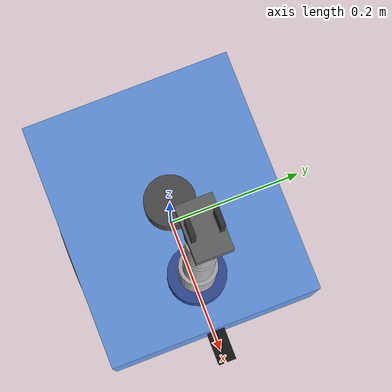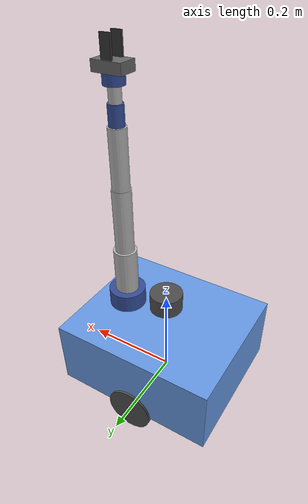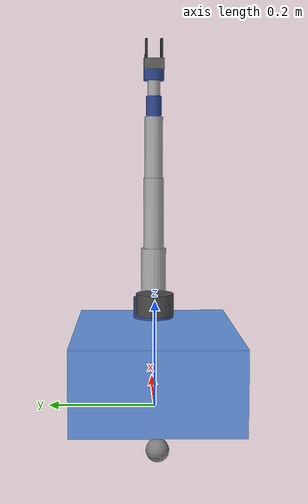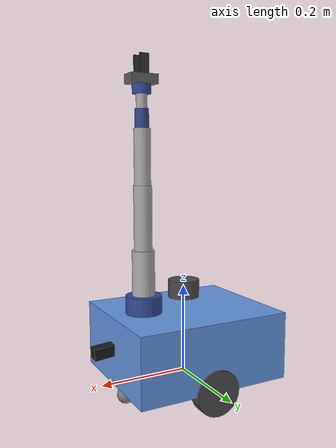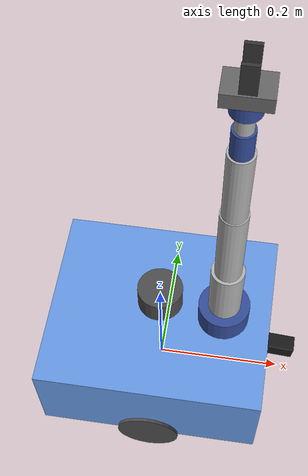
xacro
<?xml version="1.0"?>
<!-- 家用机器人主URDF描述文件 -->
<!-- 集成底盘 + 机械臂 + 夹爪 + 传感器 -->
<robot xmlns:xacro="http://www.ros.org/wiki/xacro" name="robot_home">

  <!-- 引入子模块 -->
  <xacro:include filename="$(find robot_home_description)/urdf/chassis.urdf.xacro"/>
  <xacro:include filename="$(find robot_home_description)/urdf/arm.urdf.xacro"/>
  <xacro:include filename="$(find robot_home_description)/urdf/gripper.urdf.xacro"/>

  <!-- 机器人基础参数 -->
  <xacro:property name="chassis_length" value="0.35"/>
  <xacro:property name="chassis_width" value="0.30"/>
  <xacro:property name="chassis_height" value="0.15"/>
  <xacro:property name="wheel_radius" value="0.05"/>
  <xacro:property name="wheel_separation" value="0.28"/>

  <!-- 底盘 -->
  <xacro:chassis
    length="${chassis_length}"
    width="${chassis_width}"
    height="${chassis_height}"
    wheel_radius="${wheel_radius}"
    wheel_separation="${wheel_separation}"
  />

  <!-- 机械臂（安装在底盘顶部前方） -->
  <xacro:arm parent="base_link">
    <origin xyz="0.1 0 0.15" rpy="0 0 0"/>
  </xacro:arm>

  <!-- 夹爪（安装在机械臂末端） -->
  <xacro:gripper parent="arm_link_6">
    <origin xyz="0 0 0.02" rpy="0 0 0"/>
  </xacro:gripper>

  <!-- 激光雷达（安装在底盘顶部中央） -->
  <link name="lidar_link">
    <visual>
      <origin xyz="0 0 0" rpy="0 0 0"/>
      <geometry>
        <cylinder radius="0.035" length="0.04"/>
      </geometry>
      <material name="dark_grey">
        <color rgba="0.3 0.3 0.3 1.0"/>
      </material>
    </visual>
    <collision>
      <origin xyz="0 0 0" rpy="0 0 0"/>
      <geometry>
        <cylinder radius="0.035" length="0.04"/>
      </geometry>
    </collision>
    <inertial>
      <mass value="0.2"/>
      <inertia ixx="0.0001" ixy="0" ixz="0" iyy="0.0001" iyz="0" izz="0.0001"/>
    </inertial>
  </link>
  <joint name="lidar_joint" type="fixed">
    <parent link="base_link"/>
    <child link="lidar_link"/>
    <origin xyz="0 0 0.195" rpy="0 0 0"/>
  </joint>

  <!-- 深度相机（安装在底盘前方，略高于底盘） -->
  <link name="camera_link">
    <visual>
      <origin xyz="0 0 0" rpy="0 0 0"/>
      <geometry>
        <box size="0.09 0.025 0.025"/>
      </geometry>
      <material name="black">
        <color rgba="0.1 0.1 0.1 1.0"/>
      </material>
    </visual>
    <collision>
      <origin xyz="0 0 0" rpy="0 0 0"/>
      <geometry>
        <box size="0.09 0.025 0.025"/>
      </geometry>
    </collision>
    <inertial>
      <mass value="0.07"/>
      <inertia ixx="0.00001" ixy="0" ixz="0" iyy="0.00001" iyz="0" izz="0.00001"/>
    </inertial>
  </link>
  <joint name="camera_joint" type="fixed">
    <parent link="base_link"/>
    <child link="camera_link"/>
    <origin xyz="0.175 0 0.08" rpy="0 0.1 0"/>
  </joint>

  <!-- 相机光学坐标系（ROS标准：z向前，y向下，x向右） -->
  <link name="camera_optical_link"/>
  <joint name="camera_optical_joint" type="fixed">
    <parent link="camera_link"/>
    <child link="camera_optical_link"/>
    <origin xyz="0 0 0" rpy="${-pi/2} 0 ${-pi/2}"/>
  </joint>

  <!-- IMU传感器 -->
  <link name="imu_link">
    <inertial>
      <mass value="0.01"/>
      <inertia ixx="0.000001" ixy="0" ixz="0" iyy="0.000001" iyz="0" izz="0.000001"/>
    </inertial>
  </link>
  <joint name="imu_joint" type="fixed">
    <parent link="base_link"/>
    <child link="imu_link"/>
    <origin xyz="0 0 0.1" rpy="0 0 0"/>
  </joint>

</robot>

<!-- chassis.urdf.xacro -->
<!-- 底盘描述 - 差速驱动移动平台 -->
<robot xmlns:xacro="http://www.ros.org/wiki/xacro">

  <xacro:macro name="chassis" params="length width height wheel_radius wheel_separation">

    <!-- 底盘主体 -->
    <link name="base_link">
      <visual>
        <origin xyz="0 0 ${height/2}" rpy="0 0 0"/>
        <geometry>
          <box size="${length} ${width} ${height}"/>
        </geometry>
        <material name="light_blue">
          <color rgba="0.4 0.6 0.9 1.0"/>
        </material>
      </visual>
      <collision>
        <origin xyz="0 0 ${height/2}" rpy="0 0 0"/>
        <geometry>
          <box size="${length} ${width} ${height}"/>
        </geometry>
      </collision>
      <inertial>
        <mass value="5.0"/>
        <origin xyz="0 0 ${height/2}"/>
        <inertia ixx="0.05" ixy="0" ixz="0" iyy="0.08" iyz="0" izz="0.1"/>
      </inertial>
    </link>

    <!-- 左驱动轮 -->
    <xacro:wheel prefix="left" y_offset="${wheel_separation/2}"/>
    <!-- 右驱动轮 -->
    <xacro:wheel prefix="right" y_offset="${-wheel_separation/2}"/>
    <!-- 前万向轮 -->
    <xacro:caster prefix="front" x_offset="${length/2 - 0.03}"/>
    <!-- 后万向轮 -->
    <xacro:caster prefix="rear" x_offset="${-length/2 + 0.03}"/>

  </xacro:macro>

  <!-- 驱动轮宏 -->
  <xacro:macro name="wheel" params="prefix y_offset">
    <link name="${prefix}_wheel_link">
      <visual>
        <origin xyz="0 0 0" rpy="${pi/2} 0 0"/>
        <geometry>
          <cylinder radius="0.05" length="0.03"/>
        </geometry>
        <material name="dark_grey">
          <color rgba="0.3 0.3 0.3 1.0"/>
        </material>
      </visual>
      <collision>
        <origin xyz="0 0 0" rpy="${pi/2} 0 0"/>
        <geometry>
          <cylinder radius="0.05" length="0.03"/>
        </geometry>
      </collision>
      <inertial>
        <mass value="0.3"/>
        <inertia ixx="0.001" ixy="0" ixz="0" iyy="0.001" iyz="0" izz="0.001"/>
      </inertial>
    </link>
    <joint name="${prefix}_wheel_joint" type="continuous">
      <parent link="base_link"/>
      <child link="${prefix}_wheel_link"/>
      <origin xyz="0 ${y_offset} 0" rpy="0 0 0"/>
      <axis xyz="0 1 0"/>
      <dynamics damping="0.1" friction="0.1"/>
    </joint>
  </xacro:macro>

  <!-- 万向轮宏 -->
  <xacro:macro name="caster" params="prefix x_offset">
    <link name="${prefix}_caster_link">
      <visual>
        <origin xyz="0 0 0" rpy="0 0 0"/>
        <geometry>
          <sphere radius="0.02"/>
        </geometry>
        <material name="grey">
          <color rgba="0.5 0.5 0.5 1.0"/>
        </material>
      </visual>
      <collision>
        <origin xyz="0 0 0" rpy="0 0 0"/>
        <geometry>
          <sphere radius="0.02"/>
        </geometry>
      </collision>
      <inertial>
        <mass value="0.1"/>
        <inertia ixx="0.0001" ixy="0" ixz="0" iyy="0.0001" iyz="0" izz="0.0001"/>
      </inertial>
    </link>
    <joint name="${prefix}_caster_joint" type="fixed">
      <parent link="base_link"/>
      <child link="${prefix}_caster_link"/>
      <origin xyz="${x_offset} 0 -0.03" rpy="0 0 0"/>
    </joint>
  </xacro:macro>

</robot>

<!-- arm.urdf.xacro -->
<!-- 6DOF机械臂描述 - 家用小型机械臂 -->
<robot xmlns:xacro="http://www.ros.org/wiki/xacro">

  <xacro:macro name="arm" params="parent *origin">

    <!-- 关节连接 -->
    <joint name="arm_base_joint" type="fixed">
      <xacro:insert_block name="origin"/>
      <parent link="${parent}"/>
      <child link="arm_base_link"/>
    </joint>

    <!-- 机械臂基座 -->
    <link name="arm_base_link">
      <visual>
        <origin xyz="0 0 0.02" rpy="0 0 0"/>
        <geometry>
          <cylinder radius="0.04" length="0.04"/>
        </geometry>
        <material name="dark_blue">
          <color rgba="0.2 0.3 0.6 1.0"/>
        </material>
      </visual>
      <collision>
        <origin xyz="0 0 0.02" rpy="0 0 0"/>
        <geometry>
          <cylinder radius="0.04" length="0.04"/>
        </geometry>
      </collision>
      <inertial>
        <mass value="0.5"/>
        <inertia ixx="0.001" ixy="0" ixz="0" iyy="0.001" iyz="0" izz="0.001"/>
      </inertial>
    </link>

    <!-- 关节1: 基座旋转 (yaw) -->
    <joint name="arm_joint_1" type="revolute">
      <parent link="arm_base_link"/>
      <child link="arm_link_1"/>
      <origin xyz="0 0 0.04" rpy="0 0 0"/>
      <axis xyz="0 0 1"/>
      <limit lower="-3.14" upper="3.14" effort="10" velocity="1.5"/>
      <dynamics damping="0.5" friction="0.1"/>
    </joint>

    <link name="arm_link_1">
      <visual>
        <origin xyz="0 0 0.05" rpy="0 0 0"/>
        <geometry>
          <cylinder radius="0.025" length="0.1"/>
        </geometry>
        <material name="silver">
          <color rgba="0.7 0.7 0.7 1.0"/>
        </material>
      </visual>
      <collision>
        <origin xyz="0 0 0.05" rpy="0 0 0"/>
        <geometry>
          <cylinder radius="0.025" length="0.1"/>
        </geometry>
      </collision>
      <inertial>
        <mass value="0.4"/>
        <origin xyz="0 0 0.05"/>
        <inertia ixx="0.0005" ixy="0" ixz="0" iyy="0.0005" iyz="0" izz="0.0002"/>
      </inertial>
    </link>

    <!-- 关节2: 肩部 (pitch) -->
    <joint name="arm_joint_2" type="revolute">
      <parent link="arm_link_1"/>
      <child link="arm_link_2"/>
      <origin xyz="0 0 0.1" rpy="0 0 0"/>
      <axis xyz="0 1 0"/>
      <limit lower="-1.57" upper="1.57" effort="15" velocity="1.2"/>
      <dynamics damping="0.5" friction="0.1"/>
    </joint>

    <link name="arm_link_2">
      <visual>
        <origin xyz="0 0 0.07" rpy="0 0 0"/>
        <geometry>
          <cylinder radius="0.02" length="0.14"/>
        </geometry>
        <material name="silver"/>
      </visual>
      <collision>
        <origin xyz="0 0 0.07" rpy="0 0 0"/>
        <geometry>
          <cylinder radius="0.02" length="0.14"/>
        </geometry>
      </collision>
      <inertial>
        <mass value="0.35"/>
        <origin xyz="0 0 0.07"/>
        <inertia ixx="0.0008" ixy="0" ixz="0" iyy="0.0008" iyz="0" izz="0.0001"/>
      </inertial>
    </link>

    <!-- 关节3: 肘部 (pitch) -->
    <joint name="arm_joint_3" type="revolute">
      <parent link="arm_link_2"/>
      <child link="arm_link_3"/>
      <origin xyz="0 0 0.14" rpy="0 0 0"/>
      <axis xyz="0 1 0"/>
      <limit lower="-2.0" upper="2.0" effort="12" velocity="1.5"/>
      <dynamics damping="0.3" friction="0.1"/>
    </joint>

    <link name="arm_link_3">
      <visual>
        <origin xyz="0 0 0.06" rpy="0 0 0"/>
        <geometry>
          <cylinder radius="0.018" length="0.12"/>
        </geometry>
        <material name="silver"/>
      </visual>
      <collision>
        <origin xyz="0 0 0.06" rpy="0 0 0"/>
        <geometry>
          <cylinder radius="0.018" length="0.12"/>
        </geometry>
      </collision>
      <inertial>
        <mass value="0.3"/>
        <origin xyz="0 0 0.06"/>
        <inertia ixx="0.0005" ixy="0" ixz="0" iyy="0.0005" iyz="0" izz="0.0001"/>
      </inertial>
    </link>

    <!-- 关节4: 腕部旋转 (roll) -->
    <joint name="arm_joint_4" type="revolute">
      <parent link="arm_link_3"/>
      <child link="arm_link_4"/>
      <origin xyz="0 0 0.12" rpy="0 0 0"/>
      <axis xyz="1 0 0"/>
      <limit lower="-3.14" upper="3.14" effort="5" velocity="2.0"/>
      <dynamics damping="0.2" friction="0.05"/>
    </joint>

    <link name="arm_link_4">
      <visual>
        <origin xyz="0 0 0.02" rpy="0 0 0"/>
        <geometry>
          <cylinder radius="0.015" length="0.04"/>
        </geometry>
        <material name="dark_blue"/>
      </visual>
      <collision>
        <origin xyz="0 0 0.02" rpy="0 0 0"/>
        <geometry>
          <cylinder radius="0.015" length="0.04"/>
        </geometry>
      </collision>
      <inertial>
        <mass value="0.15"/>
        <inertia ixx="0.0001" ixy="0" ixz="0" iyy="0.0001" iyz="0" izz="0.00005"/>
      </inertial>
    </link>

    <!-- 关节5: 腕部俯仰 (pitch) -->
    <joint name="arm_joint_5" type="revolute">
      <parent link="arm_link_4"/>
      <child link="arm_link_5"/>
      <origin xyz="0 0 0.04" rpy="0 0 0"/>
      <axis xyz="0 1 0"/>
      <limit lower="-1.57" upper="1.57" effort="5" velocity="2.0"/>
      <dynamics damping="0.2" friction="0.05"/>
    </joint>

    <link name="arm_link_5">
      <visual>
        <origin xyz="0 0 0.015" rpy="0 0 0"/>
        <geometry>
          <cylinder radius="0.012" length="0.03"/>
        </geometry>
        <material name="silver"/>
      </visual>
      <collision>
        <origin xyz="0 0 0.015" rpy="0 0 0"/>
        <geometry>
          <cylinder radius="0.012" length="0.03"/>
        </geometry>
      </collision>
      <inertial>
        <mass value="0.1"/>
        <inertia ixx="0.00005" ixy="0" ixz="0" iyy="0.00005" iyz="0" izz="0.00003"/>
      </inertial>
    </link>

    <!-- 关节6: 末端旋转 (yaw) -->
    <joint name="arm_joint_6" type="revolute">
      <parent link="arm_link_5"/>
      <child link="arm_link_6"/>
      <origin xyz="0 0 0.03" rpy="0 0 0"/>
      <axis xyz="0 0 1"/>
      <limit lower="-3.14" upper="3.14" effort="3" velocity="2.5"/>
      <dynamics damping="0.1" friction="0.05"/>
    </joint>

    <link name="arm_link_6">
      <visual>
        <origin xyz="0 0 0.01" rpy="0 0 0"/>
        <geometry>
          <cylinder radius="0.02" length="0.02"/>
        </geometry>
        <material name="dark_blue"/>
      </visual>
      <collision>
        <origin xyz="0 0 0.01" rpy="0 0 0"/>
        <geometry>
          <cylinder radius="0.02" length="0.02"/>
        </geometry>
      </collision>
      <inertial>
        <mass value="0.08"/>
        <inertia ixx="0.00002" ixy="0" ixz="0" iyy="0.00002" iyz="0" izz="0.00002"/>
      </inertial>
    </link>

  </xacro:macro>

</robot>

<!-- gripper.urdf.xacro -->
<!-- 电动平行夹爪描述 -->
<robot xmlns:xacro="http://www.ros.org/wiki/xacro">

  <xacro:macro name="gripper" params="parent *origin">

    <!-- 夹爪基座连接 -->
    <joint name="gripper_base_joint" type="fixed">
      <xacro:insert_block name="origin"/>
      <parent link="${parent}"/>
      <child link="gripper_base_link"/>
    </joint>

    <!-- 夹爪基座 -->
    <link name="gripper_base_link">
      <visual>
        <origin xyz="0 0 0.01" rpy="0 0 0"/>
        <geometry>
          <box size="0.06 0.04 0.02"/>
        </geometry>
        <material name="dark_grey">
          <color rgba="0.4 0.4 0.4 1.0"/>
        </material>
      </visual>
      <collision>
        <origin xyz="0 0 0.01" rpy="0 0 0"/>
        <geometry>
          <box size="0.06 0.04 0.02"/>
        </geometry>
      </collision>
      <inertial>
        <mass value="0.15"/>
        <inertia ixx="0.00005" ixy="0" ixz="0" iyy="0.00005" iyz="0" izz="0.00003"/>
      </inertial>
    </link>

    <!-- 左指 -->
    <joint name="gripper_left_finger_joint" type="prismatic">
      <parent link="gripper_base_link"/>
      <child link="gripper_left_finger_link"/>
      <origin xyz="0 0.015 0.02" rpy="0 0 0"/>
      <axis xyz="0 1 0"/>
      <limit lower="0" upper="0.04" effort="10" velocity="0.1"/>
      <dynamics damping="0.5" friction="0.1"/>
    </joint>

    <link name="gripper_left_finger_link">
      <visual>
        <origin xyz="0 0 0.02" rpy="0 0 0"/>
        <geometry>
          <box size="0.02 0.005 0.04"/>
        </geometry>
        <material name="rubber">
          <color rgba="0.2 0.2 0.2 1.0"/>
        </material>
      </visual>
      <collision>
        <origin xyz="0 0 0.02" rpy="0 0 0"/>
        <geometry>
          <box size="0.02 0.005 0.04"/>
        </geometry>
      </collision>
      <inertial>
        <mass value="0.05"/>
        <inertia ixx="0.00001" ixy="0" ixz="0" iyy="0.00001" iyz="0" izz="0.000005"/>
      </inertial>
    </link>

    <!-- 右指 (mimic关节，跟随左指) -->
    <joint name="gripper_right_finger_joint" type="prismatic">
      <parent link="gripper_base_link"/>
      <child link="gripper_right_finger_link"/>
      <origin xyz="0 -0.015 0.02" rpy="0 0 0"/>
      <axis xyz="0 -1 0"/>
      <limit lower="0" upper="0.04" effort="10" velocity="0.1"/>
      <mimic joint="gripper_left_finger_joint" multiplier="1" offset="0"/>
      <dynamics damping="0.5" friction="0.1"/>
    </joint>

    <link name="gripper_right_finger_link">
      <visual>
        <origin xyz="0 0 0.02" rpy="0 0 0"/>
        <geometry>
          <box size="0.02 0.005 0.04"/>
        </geometry>
        <material name="rubber"/>
      </visual>
      <collision>
        <origin xyz="0 0 0.02" rpy="0 0 0"/>
        <geometry>
          <box size="0.02 0.005 0.04"/>
        </geometry>
      </collision>
      <inertial>
        <mass value="0.05"/>
        <inertia ixx="0.00001" ixy="0" ixz="0" iyy="0.00001" iyz="0" izz="0.000005"/>
      </inertial>
    </link>

  </xacro:macro>

</robot>
